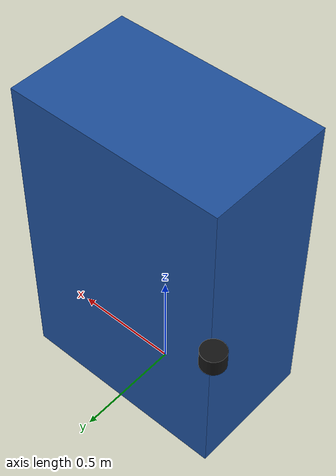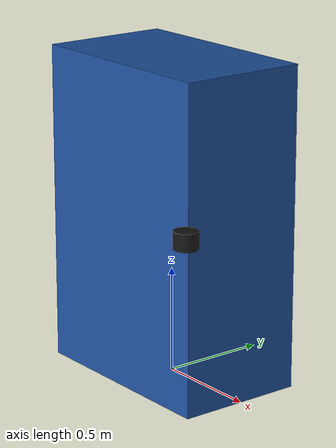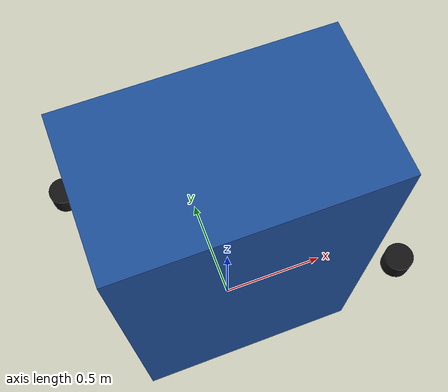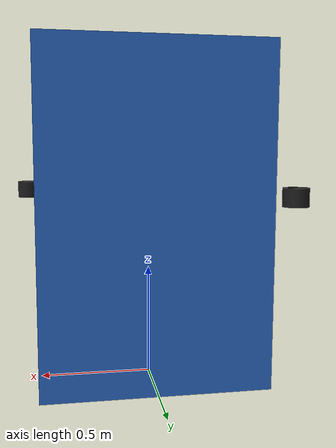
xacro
<?xml version="1.0"?>
<robot xmlns:xacro="http://www.ros.org/wiki/xacro" name="runner">
  <xacro:arg name="robot_name" default="runner_01"/>

  <xacro:property name="body_width" value="0.6"/>
  <xacro:property name="body_length" value="1.0"/>
  <xacro:property name="body_height" value="1.5"/>
  <xacro:property name="body_z" value="0.75"/>
  <xacro:property name="wheel_radius" value="0.12"/>
  <xacro:property name="wheel_width" value="0.06"/>
  <xacro:property name="wheel_track" value="0.52"/>
  <xacro:property name="wheel_x" value="0"/>
  <xacro:property name="lidar_height" value="1.6"/>
  <xacro:property name="lidar_range_min" value="0.12"/>
  <xacro:property name="lidar_range_max" value="30.0"/>
  <xacro:property name="lidar_update_rate" value="10.0"/>
  <xacro:property name="imu_update_rate" value="100.0"/>
  <xacro:property name="imu_accel_noise" value="0.02"/>
  <xacro:property name="imu_gyro_noise" value="0.01"/>
  <!-- Chassis collision starts above the floor so only wheels and casters touch the ground. -->
  <xacro:property name="ground_clearance" value="0.06"/>
  <xacro:property name="caster_radius" value="0.09"/>
  <!-- Casters hang slightly above the floor so the drive wheels always carry the load (traction). -->
  <xacro:property name="caster_gap" value="0.005"/>

  <material name="runner_blue"><color rgba="0.12 0.32 0.62 1.0"/></material>
  <material name="rubber"><color rgba="0.03 0.03 0.03 1.0"/></material>
  <material name="sensor_black"><color rgba="0.08 0.08 0.08 1.0"/></material>

  <link name="base_link">
    <inertial>
      <origin xyz="0 0 0"/>
      <mass value="45.0"/>
      <inertia ixx="10.0" ixy="0" ixz="0" iyy="6.0" iyz="0" izz="8.0"/>
    </inertial>
    <visual>
      <origin xyz="0 0 ${body_z}"/>
      <geometry><box size="${body_length} ${body_width} ${body_height}"/></geometry>
      <material name="runner_blue"/>
    </visual>
    <collision name="chassis_collision">
      <origin xyz="0 0 ${(body_height + ground_clearance) / 2}"/>
      <geometry><box size="${body_length} ${body_width} ${body_height - ground_clearance}"/></geometry>
    </collision>
  </link>

  <link name="left_wheel_link">
    <inertial><mass value="1.5"/><inertia ixx="0.01" iyy="0.01" izz="0.01" ixy="0" ixz="0" iyz="0"/></inertial>
    <visual><origin rpy="${pi / 2} 0 0"/><geometry><cylinder radius="${wheel_radius}" length="${wheel_width}"/></geometry><material name="rubber"/></visual>
    <collision><origin rpy="${pi / 2} 0 0"/><geometry><cylinder radius="${wheel_radius}" length="${wheel_width}"/></geometry></collision>
  </link>
  <joint name="left_wheel_joint" type="continuous">
    <parent link="base_link"/><child link="left_wheel_link"/>
    <origin xyz="${wheel_x} ${wheel_track / 2} ${wheel_radius}"/>
    <axis xyz="0 1 0"/>
  </joint>

  <link name="right_wheel_link">
    <inertial><mass value="1.5"/><inertia ixx="0.01" iyy="0.01" izz="0.01" ixy="0" ixz="0" iyz="0"/></inertial>
    <visual><origin rpy="${pi / 2} 0 0"/><geometry><cylinder radius="${wheel_radius}" length="${wheel_width}"/></geometry><material name="rubber"/></visual>
    <collision><origin rpy="${pi / 2} 0 0"/><geometry><cylinder radius="${wheel_radius}" length="${wheel_width}"/></geometry></collision>
  </link>
  <joint name="right_wheel_joint" type="continuous">
    <parent link="base_link"/><child link="right_wheel_link"/>
    <origin xyz="${wheel_x} -${wheel_track / 2} ${wheel_radius}"/>
    <axis xyz="0 1 0"/>
  </joint>

  <gazebo reference="left_wheel_link"><mu1>1.0</mu1><mu2>1.0</mu2></gazebo>
  <gazebo reference="right_wheel_link"><mu1>1.0</mu1><mu2>1.0</mu2></gazebo>

  <!-- Passive casters are modelled as frictionless spheres, otherwise they brake turning in place. -->
  <xacro:macro name="caster" params="name x">
    <link name="${name}_link">
      <inertial><mass value="0.8"/><inertia ixx="0.005" iyy="0.005" izz="0.005" ixy="0" ixz="0" iyz="0"/></inertial>
      <visual><geometry><sphere radius="${caster_radius}"/></geometry><material name="rubber"/></visual>
      <collision><geometry><sphere radius="${caster_radius}"/></geometry></collision>
    </link>
    <joint name="${name}_joint" type="fixed">
      <parent link="base_link"/><child link="${name}_link"/>
      <origin xyz="${x} 0 ${caster_radius + caster_gap}"/>
    </joint>
    <gazebo reference="${name}_link"><mu1>0.0</mu1><mu2>0.0</mu2></gazebo>
  </xacro:macro>

  <xacro:caster name="front_caster" x="0.38"/>
  <xacro:caster name="rear_caster" x="-0.38"/>

  <xacro:macro name="lidar" params="name x y yaw topic">
    <link name="${name}_link">
      <visual><geometry><cylinder radius="0.055" length="0.08"/></geometry><material name="sensor_black"/></visual>
    </link>
    <joint name="${name}_joint" type="fixed">
      <parent link="base_link"/><child link="${name}_link"/>
      <origin xyz="${x} ${y} ${lidar_height - body_z}" rpy="0 0 ${yaw}"/>
    </joint>
    <gazebo reference="${name}_link">
      <sensor name="${name}" type="gpu_lidar">
        <always_on>true</always_on>
        <visualize>true</visualize>
        <update_rate>${lidar_update_rate}</update_rate>
        <topic>${topic}</topic>
        <pose>0 0 0 0 0 0</pose>
        <lidar>
          <scan>
            <horizontal>
              <samples>1080</samples>
              <resolution>1</resolution>
              <min_angle>-2.35619</min_angle>
              <max_angle>2.35619</max_angle>
            </horizontal>
          </scan>
          <range><min>${lidar_range_min}</min><max>${lidar_range_max}</max><resolution>0.01</resolution></range>
        </lidar>
      </sensor>
    </gazebo>
  </xacro:macro>

  <!-- Front-right points forward; rear-left points backward. Sensor housings have no collision geometry. -->
  <xacro:lidar name="front_right_lidar" x="0.56" y="-0.36" yaw="0" topic="/$(arg robot_name)_lidar_front"/>
  <xacro:lidar name="rear_left_lidar" x="-0.56" y="0.36" yaw="${pi}" topic="/$(arg robot_name)_lidar_rear"/>

  <link name="imu_link"/>
  <joint name="imu_joint" type="fixed">
    <parent link="base_link"/><child link="imu_link"/><origin xyz="0 0 0.25"/>
  </joint>

  <gazebo>
    <plugin filename="gz-sim-diff-drive-system" name="gz::sim::systems::DiffDrive">
      <left_joint>left_wheel_joint</left_joint>
      <right_joint>right_wheel_joint</right_joint>
      <wheel_separation>${wheel_track}</wheel_separation>
      <wheel_radius>${wheel_radius}</wheel_radius>
      <max_linear_velocity>2.0</max_linear_velocity>
      <max_angular_velocity>1.5707963267948966</max_angular_velocity>
      <!-- Without acceleration limits velocity steps make the wheels slip and corrupt wheel odometry. -->
      <min_linear_acceleration>-1.0</min_linear_acceleration>
      <max_linear_acceleration>1.0</max_linear_acceleration>
      <min_angular_acceleration>-2.0</min_angular_acceleration>
      <max_angular_acceleration>2.0</max_angular_acceleration>
      <topic>/$(arg robot_name)/cmd_vel</topic>
      <odom_topic>/$(arg robot_name)/wheel/odometry</odom_topic>
      <tf_topic>/$(arg robot_name)/tf</tf_topic>
      <frame_id>$(arg robot_name)/odom</frame_id>
      <child_frame_id>$(arg robot_name)/base_link</child_frame_id>
    </plugin>
    <plugin filename="gz-sim-odometry-publisher-system" name="gz::sim::systems::OdometryPublisher">
      <odom_publish_frequency>30</odom_publish_frequency>
      <odom_topic>/$(arg robot_name)/ground_truth/odometry</odom_topic>
      <odom_frame>$(arg robot_name)/ground_truth</odom_frame>
      <robot_base_frame>$(arg robot_name)/base_link</robot_base_frame>
    </plugin>
  </gazebo>

  <gazebo reference="imu_link">
    <sensor name="imu" type="imu">
      <always_on>true</always_on>
      <update_rate>${imu_update_rate}</update_rate>
      <topic>/$(arg robot_name)/sensors/imu/data</topic>
      <imu>
        <angular_velocity><x><noise type="gaussian"><stddev>${imu_gyro_noise}</stddev></noise></x><y><noise type="gaussian"><stddev>${imu_gyro_noise}</stddev></noise></y><z><noise type="gaussian"><stddev>${imu_gyro_noise}</stddev></noise></z></angular_velocity>
        <linear_acceleration><x><noise type="gaussian"><stddev>${imu_accel_noise}</stddev></noise></x><y><noise type="gaussian"><stddev>${imu_accel_noise}</stddev></noise></y><z><noise type="gaussian"><stddev>${imu_accel_noise}</stddev></noise></z></linear_acceleration>
      </imu>
    </sensor>
  </gazebo>
</robot>
